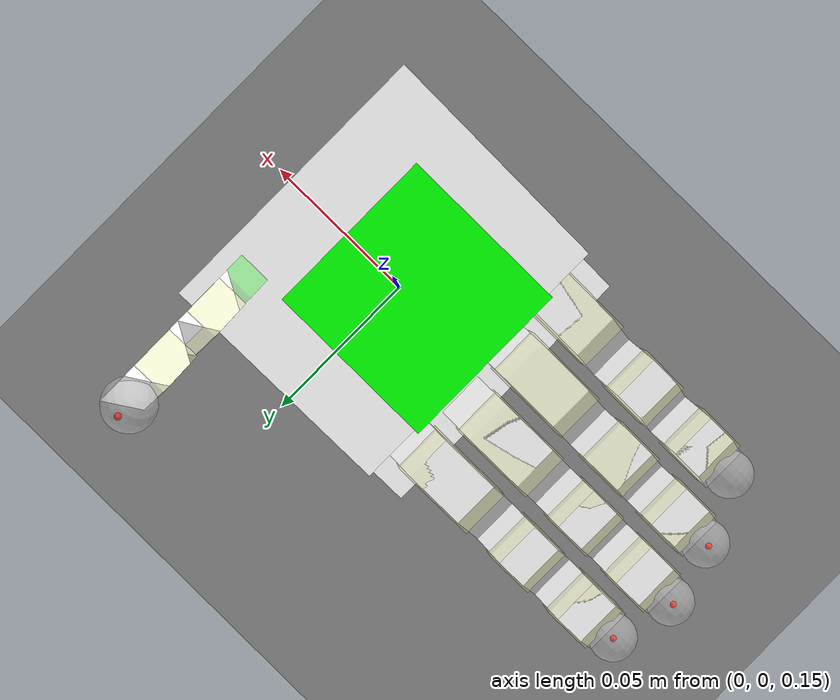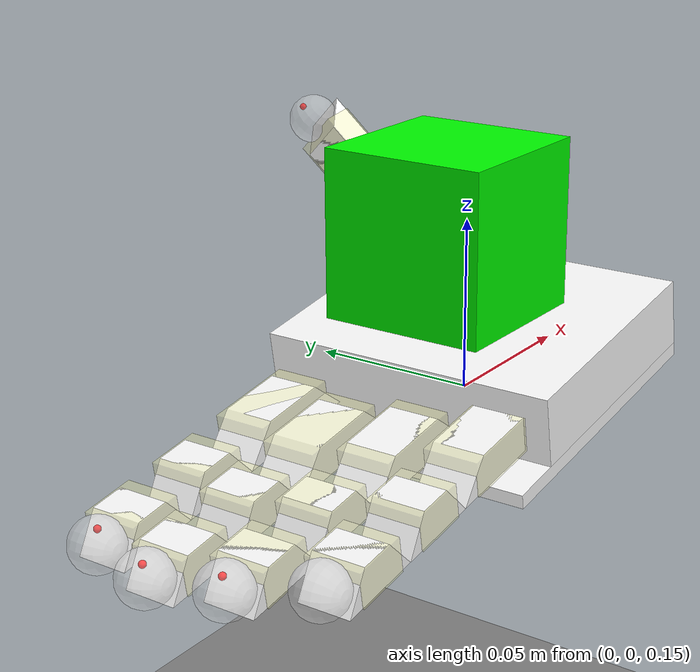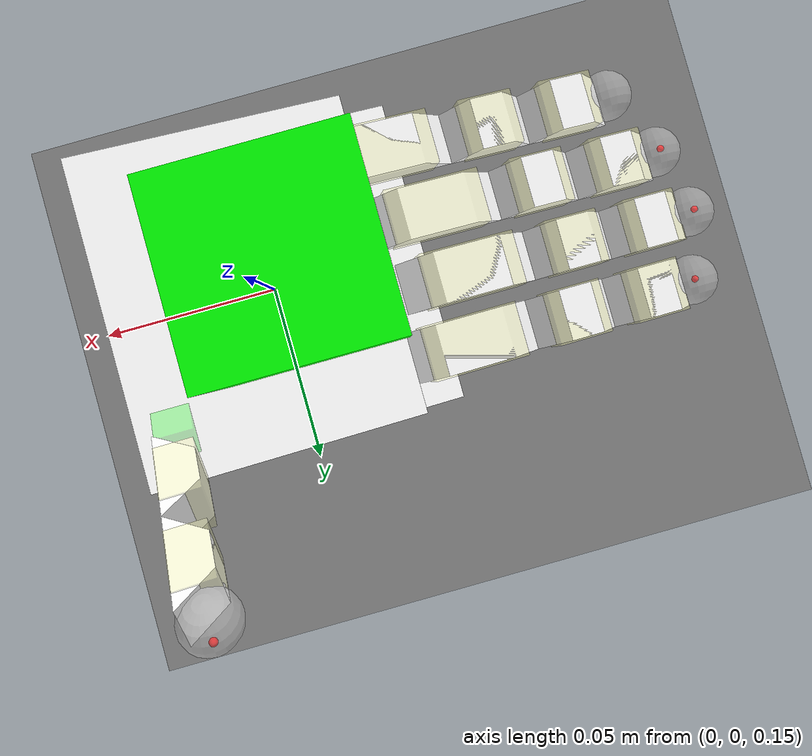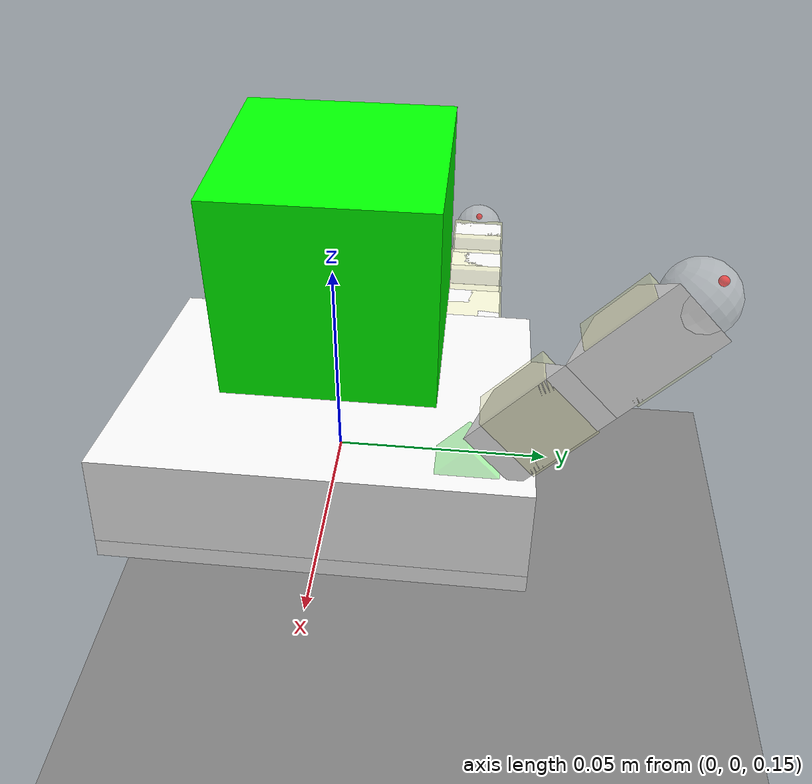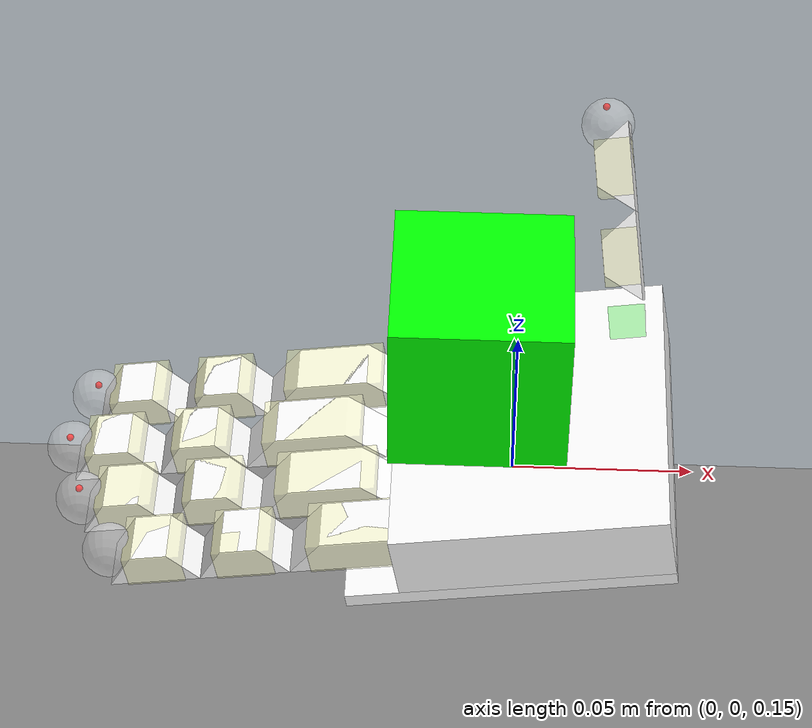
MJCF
<?xml version="1.0" ?>
<!-- Reorient手模型, 5x5 sphere tac sensors -->
<mujoco model="hand">
    <compiler angle="radian"/>
    <option integrator="implicitfast" iterations="6" ls_iterations="4" tolerance="1e-3"/>
    <option>
        <flag filterparent="disable"/>
    </option>
    <option gravity="0 0 -9.81"/>
    <keyframe>
        <key name="home"
            qpos="0 0 0 0 0 0 0 0 0 0 0 0 0 0 0 0 0 0 0 0 0 0 0 0 0 0"
            qvel="0 0 0 0 0 0 0 0 0 0 0 0 0 0 0 0 0 0 0 0 0 0 0 0 0"
            ctrl="0 0 0 0 0 0 0 0 0 0 0 0 0 0 0 0 0 0 0 "
        />
        <!-- qpos 26 qvel 25 ctrl 19 -->
    </keyframe>
    <default>
        <geom solref="0.001 1" solimp="0.99 0.999 0.0001"/>
        <default class="cube">
            <geom friction=".3 0.05" contype="2" conaffinity="1" condim="3"/>
        </default>
        <default class="hand">
            <geom contype="1" conaffinity="2" type="mesh" density="200" friction="0.7 0.05 0.0002" solref="0.02 1.5" solimp="0.9 0.99 0.001" condim="3" rgba="0 0 1 0"/>
        </default>
        <default class="visual">
            <geom contype="0" conaffinity="0" group="2" density="0"/>
        </default>
    </default>
    <asset>
        <mesh name="thumb_base_link" vertex="0.0 0.0 -0.0075 0.04 0.0 -0.0075 0.03 0.01 -0.0075 0.01 0.01 -0.0075 0.0 0.0 0.0075 0.04 0.0 0.0075 0.03 0.01 0.0075 0.01 0.01 0.0075" normal="-0.7734590803390136 -0.3203772410170408 -0.5469181606780271 0.7734590803390136 -0.3203772410170408 -0.5469181606780271 0.2971085791188998 0.7172835612062476 -0.6302624731310217 -0.2971085791188997 0.7172835612062475 -0.6302624731310217 -0.7734590803390136 -0.32037724101704074 0.5469181606780271 0.7734590803390138 -0.32037724101704057 0.5469181606780271 0.29710857911889976 0.7172835612062477 0.6302624731310216 -0.29710857911889976 0.7172835612062476 0.6302624731310217" face="1 0 3 3 2 1 7 4 5 5 6 7 5 4 1 1 4 0 6 5 2 2 5 1 4 7 0 0 7 3 7 6 3 3 6 2"/>
        <mesh name="thumb_link_1" vertex="0.0 0.0 -0.0075 0.04 0.0 -0.0075 0.03 0.01 -0.0075 0.01 0.01 -0.0075 0.0 0.0 0.0075 0.04 0.0 0.0075 0.03 0.01 0.0075 0.01 0.01 0.0075" normal="-0.7734590803390136 -0.3203772410170408 -0.5469181606780271 0.7734590803390136 -0.3203772410170408 -0.5469181606780271 0.2971085791188998 0.7172835612062476 -0.6302624731310217 -0.2971085791188997 0.7172835612062475 -0.6302624731310217 -0.7734590803390136 -0.32037724101704074 0.5469181606780271 0.7734590803390138 -0.32037724101704057 0.5469181606780271 0.29710857911889976 0.7172835612062477 0.6302624731310216 -0.29710857911889976 0.7172835612062476 0.6302624731310217" face="1 0 3 3 2 1 7 4 5 5 6 7 5 4 1 1 4 0 6 5 2 2 5 1 4 7 0 0 7 3 7 6 3 3 6 2"/>
        <mesh name="thumb_link_2" vertex="0.0 0.0 -0.0075 0.025 0.0 -0.0075 0.0175 0.01 -0.0075 0.007500000000000001 0.01 -0.0075 0.0 0.0 0.0075 0.025 0.0 0.0075 0.0175 0.01 0.0075 0.007500000000000001 0.01 0.0075" normal="-0.7464925414001442 -0.3732462707000721 -0.5508503490444955 0.7464925414001442 -0.3732462707000721 -0.5508503490444956 0.351257248032334 0.702514496064668 -0.618944043128098 -0.351257248032334 0.702514496064668 -0.618944043128098 -0.7464925414001442 -0.3732462707000721 0.5508503490444955 0.7464925414001442 -0.373246270700072 0.5508503490444956 0.351257248032334 0.7025144960646681 0.618944043128098 -0.351257248032334 0.702514496064668 0.618944043128098" face="1 0 3 3 2 1 7 4 5 5 6 7 5 4 1 1 4 0 6 5 2 2 5 1 4 7 0 0 7 3 7 6 3 3 6 2"/>
        <mesh name="thumb_link_3" vertex="0.0 0.0 -0.0075 0.025 0.0 -0.0075 0.0175 0.01 -0.0075 0.007500000000000001 0.01 -0.0075 0.0 0.0 0.0075 0.025 0.0 0.0075 0.0175 0.01 0.0075 0.007500000000000001 0.01 0.0075" normal="-0.7464925414001442 -0.3732462707000721 -0.5508503490444955 0.7464925414001442 -0.3732462707000721 -0.5508503490444956 0.351257248032334 0.702514496064668 -0.618944043128098 -0.351257248032334 0.702514496064668 -0.618944043128098 -0.7464925414001442 -0.3732462707000721 0.5508503490444955 0.7464925414001442 -0.373246270700072 0.5508503490444956 0.351257248032334 0.7025144960646681 0.618944043128098 -0.351257248032334 0.702514496064668 0.618944043128098" face="1 0 3 3 2 1 7 4 5 5 6 7 5 4 1 1 4 0 6 5 2 2 5 1 4 7 0 0 7 3 7 6 3 3 6 2"/>
        <mesh name="index_base_link" vertex="0.0 0.0 -0.0075 0.04 0.0 -0.0075 0.03 0.01 -0.0075 0.01 0.01 -0.0075 0.0 0.0 0.0075 0.04 0.0 0.0075 0.03 0.01 0.0075 0.01 0.01 0.0075" normal="-0.7734590803390136 -0.3203772410170408 -0.5469181606780271 0.7734590803390136 -0.3203772410170408 -0.5469181606780271 0.2971085791188998 0.7172835612062476 -0.6302624731310217 -0.2971085791188997 0.7172835612062475 -0.6302624731310217 -0.7734590803390136 -0.32037724101704074 0.5469181606780271 0.7734590803390138 -0.32037724101704057 0.5469181606780271 0.29710857911889976 0.7172835612062477 0.6302624731310216 -0.29710857911889976 0.7172835612062476 0.6302624731310217" face="1 0 3 3 2 1 7 4 5 5 6 7 5 4 1 1 4 0 6 5 2 2 5 1 4 7 0 0 7 3 7 6 3 3 6 2"/>
        <mesh name="index_link_1" vertex="0.0 0.0 -0.0075 0.04 0.0 -0.0075 0.03 0.01 -0.0075 0.01 0.01 -0.0075 0.0 0.0 0.0075 0.04 0.0 0.0075 0.03 0.01 0.0075 0.01 0.01 0.0075" normal="-0.7734590803390136 -0.3203772410170408 -0.5469181606780271 0.7734590803390136 -0.3203772410170408 -0.5469181606780271 0.2971085791188998 0.7172835612062476 -0.6302624731310217 -0.2971085791188997 0.7172835612062475 -0.6302624731310217 -0.7734590803390136 -0.32037724101704074 0.5469181606780271 0.7734590803390138 -0.32037724101704057 0.5469181606780271 0.29710857911889976 0.7172835612062477 0.6302624731310216 -0.29710857911889976 0.7172835612062476 0.6302624731310217" face="1 0 3 3 2 1 7 4 5 5 6 7 5 4 1 1 4 0 6 5 2 2 5 1 4 7 0 0 7 3 7 6 3 3 6 2"/>
        <mesh name="index_link_2" vertex="0.0 0.0 -0.0075 0.025 0.0 -0.0075 0.0175 0.01 -0.0075 0.007500000000000001 0.01 -0.0075 0.0 0.0 0.0075 0.025 0.0 0.0075 0.0175 0.01 0.0075 0.007500000000000001 0.01 0.0075" normal="-0.7464925414001442 -0.3732462707000721 -0.5508503490444955 0.7464925414001442 -0.3732462707000721 -0.5508503490444956 0.351257248032334 0.702514496064668 -0.618944043128098 -0.351257248032334 0.702514496064668 -0.618944043128098 -0.7464925414001442 -0.3732462707000721 0.5508503490444955 0.7464925414001442 -0.373246270700072 0.5508503490444956 0.351257248032334 0.7025144960646681 0.618944043128098 -0.351257248032334 0.702514496064668 0.618944043128098" face="1 0 3 3 2 1 7 4 5 5 6 7 5 4 1 1 4 0 6 5 2 2 5 1 4 7 0 0 7 3 7 6 3 3 6 2"/>
        <mesh name="index_link_3" vertex="0.0 0.0 -0.0075 0.025 0.0 -0.0075 0.0175 0.01 -0.0075 0.007500000000000001 0.01 -0.0075 0.0 0.0 0.0075 0.025 0.0 0.0075 0.0175 0.01 0.0075 0.007500000000000001 0.01 0.0075" normal="-0.7464925414001442 -0.3732462707000721 -0.5508503490444955 0.7464925414001442 -0.3732462707000721 -0.5508503490444956 0.351257248032334 0.702514496064668 -0.618944043128098 -0.351257248032334 0.702514496064668 -0.618944043128098 -0.7464925414001442 -0.3732462707000721 0.5508503490444955 0.7464925414001442 -0.373246270700072 0.5508503490444956 0.351257248032334 0.7025144960646681 0.618944043128098 -0.351257248032334 0.702514496064668 0.618944043128098" face="1 0 3 3 2 1 7 4 5 5 6 7 5 4 1 1 4 0 6 5 2 2 5 1 4 7 0 0 7 3 7 6 3 3 6 2"/>
        <mesh name="middle_base_link" vertex="0.0 0.0 -0.0075 0.04 0.0 -0.0075 0.03 0.01 -0.0075 0.01 0.01 -0.0075 0.0 0.0 0.0075 0.04 0.0 0.0075 0.03 0.01 0.0075 0.01 0.01 0.0075" normal="-0.7734590803390136 -0.3203772410170408 -0.5469181606780271 0.7734590803390136 -0.3203772410170408 -0.5469181606780271 0.2971085791188998 0.7172835612062476 -0.6302624731310217 -0.2971085791188997 0.7172835612062475 -0.6302624731310217 -0.7734590803390136 -0.32037724101704074 0.5469181606780271 0.7734590803390138 -0.32037724101704057 0.5469181606780271 0.29710857911889976 0.7172835612062477 0.6302624731310216 -0.29710857911889976 0.7172835612062476 0.6302624731310217" face="1 0 3 3 2 1 7 4 5 5 6 7 5 4 1 1 4 0 6 5 2 2 5 1 4 7 0 0 7 3 7 6 3 3 6 2"/>
        <mesh name="middle_link_1" vertex="0.0 0.0 -0.0075 0.04 0.0 -0.0075 0.03 0.01 -0.0075 0.01 0.01 -0.0075 0.0 0.0 0.0075 0.04 0.0 0.0075 0.03 0.01 0.0075 0.01 0.01 0.0075" normal="-0.7734590803390136 -0.3203772410170408 -0.5469181606780271 0.7734590803390136 -0.3203772410170408 -0.5469181606780271 0.2971085791188998 0.7172835612062476 -0.6302624731310217 -0.2971085791188997 0.7172835612062475 -0.6302624731310217 -0.7734590803390136 -0.32037724101704074 0.5469181606780271 0.7734590803390138 -0.32037724101704057 0.5469181606780271 0.29710857911889976 0.7172835612062477 0.6302624731310216 -0.29710857911889976 0.7172835612062476 0.6302624731310217" face="1 0 3 3 2 1 7 4 5 5 6 7 5 4 1 1 4 0 6 5 2 2 5 1 4 7 0 0 7 3 7 6 3 3 6 2"/>
        <mesh name="middle_link_2" vertex="0.0 0.0 -0.0075 0.025 0.0 -0.0075 0.0175 0.01 -0.0075 0.007500000000000001 0.01 -0.0075 0.0 0.0 0.0075 0.025 0.0 0.0075 0.0175 0.01 0.0075 0.007500000000000001 0.01 0.0075" normal="-0.7464925414001442 -0.3732462707000721 -0.5508503490444955 0.7464925414001442 -0.3732462707000721 -0.5508503490444956 0.351257248032334 0.702514496064668 -0.618944043128098 -0.351257248032334 0.702514496064668 -0.618944043128098 -0.7464925414001442 -0.3732462707000721 0.5508503490444955 0.7464925414001442 -0.373246270700072 0.5508503490444956 0.351257248032334 0.7025144960646681 0.618944043128098 -0.351257248032334 0.702514496064668 0.618944043128098" face="1 0 3 3 2 1 7 4 5 5 6 7 5 4 1 1 4 0 6 5 2 2 5 1 4 7 0 0 7 3 7 6 3 3 6 2"/>
        <mesh name="middle_link_3" vertex="0.0 0.0 -0.0075 0.025 0.0 -0.0075 0.0175 0.01 -0.0075 0.007500000000000001 0.01 -0.0075 0.0 0.0 0.0075 0.025 0.0 0.0075 0.0175 0.01 0.0075 0.007500000000000001 0.01 0.0075" normal="-0.7464925414001442 -0.3732462707000721 -0.5508503490444955 0.7464925414001442 -0.3732462707000721 -0.5508503490444956 0.351257248032334 0.702514496064668 -0.618944043128098 -0.351257248032334 0.702514496064668 -0.618944043128098 -0.7464925414001442 -0.3732462707000721 0.5508503490444955 0.7464925414001442 -0.373246270700072 0.5508503490444956 0.351257248032334 0.7025144960646681 0.618944043128098 -0.351257248032334 0.702514496064668 0.618944043128098" face="1 0 3 3 2 1 7 4 5 5 6 7 5 4 1 1 4 0 6 5 2 2 5 1 4 7 0 0 7 3 7 6 3 3 6 2"/>
        <mesh name="ring_base_link" vertex="0.0 0.0 -0.0075 0.04 0.0 -0.0075 0.03 0.01 -0.0075 0.01 0.01 -0.0075 0.0 0.0 0.0075 0.04 0.0 0.0075 0.03 0.01 0.0075 0.01 0.01 0.0075" normal="-0.7734590803390136 -0.3203772410170408 -0.5469181606780271 0.7734590803390136 -0.3203772410170408 -0.5469181606780271 0.2971085791188998 0.7172835612062476 -0.6302624731310217 -0.2971085791188997 0.7172835612062475 -0.6302624731310217 -0.7734590803390136 -0.32037724101704074 0.5469181606780271 0.7734590803390138 -0.32037724101704057 0.5469181606780271 0.29710857911889976 0.7172835612062477 0.6302624731310216 -0.29710857911889976 0.7172835612062476 0.6302624731310217" face="1 0 3 3 2 1 7 4 5 5 6 7 5 4 1 1 4 0 6 5 2 2 5 1 4 7 0 0 7 3 7 6 3 3 6 2"/>
        <mesh name="ring_link_1" vertex="0.0 0.0 -0.0075 0.04 0.0 -0.0075 0.03 0.01 -0.0075 0.01 0.01 -0.0075 0.0 0.0 0.0075 0.04 0.0 0.0075 0.03 0.01 0.0075 0.01 0.01 0.0075" normal="-0.7734590803390136 -0.3203772410170408 -0.5469181606780271 0.7734590803390136 -0.3203772410170408 -0.5469181606780271 0.2971085791188998 0.7172835612062476 -0.6302624731310217 -0.2971085791188997 0.7172835612062475 -0.6302624731310217 -0.7734590803390136 -0.32037724101704074 0.5469181606780271 0.7734590803390138 -0.32037724101704057 0.5469181606780271 0.29710857911889976 0.7172835612062477 0.6302624731310216 -0.29710857911889976 0.7172835612062476 0.6302624731310217" face="1 0 3 3 2 1 7 4 5 5 6 7 5 4 1 1 4 0 6 5 2 2 5 1 4 7 0 0 7 3 7 6 3 3 6 2"/>
        <mesh name="ring_link_2" vertex="0.0 0.0 -0.0075 0.025 0.0 -0.0075 0.0175 0.01 -0.0075 0.007500000000000001 0.01 -0.0075 0.0 0.0 0.0075 0.025 0.0 0.0075 0.0175 0.01 0.0075 0.007500000000000001 0.01 0.0075" normal="-0.7464925414001442 -0.3732462707000721 -0.5508503490444955 0.7464925414001442 -0.3732462707000721 -0.5508503490444956 0.351257248032334 0.702514496064668 -0.618944043128098 -0.351257248032334 0.702514496064668 -0.618944043128098 -0.7464925414001442 -0.3732462707000721 0.5508503490444955 0.7464925414001442 -0.373246270700072 0.5508503490444956 0.351257248032334 0.7025144960646681 0.618944043128098 -0.351257248032334 0.702514496064668 0.618944043128098" face="1 0 3 3 2 1 7 4 5 5 6 7 5 4 1 1 4 0 6 5 2 2 5 1 4 7 0 0 7 3 7 6 3 3 6 2"/>
        <mesh name="ring_link_3" vertex="0.0 0.0 -0.0075 0.025 0.0 -0.0075 0.0175 0.01 -0.0075 0.007500000000000001 0.01 -0.0075 0.0 0.0 0.0075 0.025 0.0 0.0075 0.0175 0.01 0.0075 0.007500000000000001 0.01 0.0075" normal="-0.7464925414001442 -0.3732462707000721 -0.5508503490444955 0.7464925414001442 -0.3732462707000721 -0.5508503490444956 0.351257248032334 0.702514496064668 -0.618944043128098 -0.351257248032334 0.702514496064668 -0.618944043128098 -0.7464925414001442 -0.3732462707000721 0.5508503490444955 0.7464925414001442 -0.373246270700072 0.5508503490444956 0.351257248032334 0.7025144960646681 0.618944043128098 -0.351257248032334 0.702514496064668 0.618944043128098" face="1 0 3 3 2 1 7 4 5 5 6 7 5 4 1 1 4 0 6 5 2 2 5 1 4 7 0 0 7 3 7 6 3 3 6 2"/>
        <mesh name="little_base_link" vertex="0.0 0.0 -0.0075 0.04 0.0 -0.0075 0.03 0.01 -0.0075 0.01 0.01 -0.0075 0.0 0.0 0.0075 0.04 0.0 0.0075 0.03 0.01 0.0075 0.01 0.01 0.0075" normal="-0.7734590803390136 -0.3203772410170408 -0.5469181606780271 0.7734590803390136 -0.3203772410170408 -0.5469181606780271 0.2971085791188998 0.7172835612062476 -0.6302624731310217 -0.2971085791188997 0.7172835612062475 -0.6302624731310217 -0.7734590803390136 -0.32037724101704074 0.5469181606780271 0.7734590803390138 -0.32037724101704057 0.5469181606780271 0.29710857911889976 0.7172835612062477 0.6302624731310216 -0.29710857911889976 0.7172835612062476 0.6302624731310217" face="1 0 3 3 2 1 7 4 5 5 6 7 5 4 1 1 4 0 6 5 2 2 5 1 4 7 0 0 7 3 7 6 3 3 6 2"/>
        <mesh name="little_link_1" vertex="0.0 0.0 -0.0075 0.04 0.0 -0.0075 0.03 0.01 -0.0075 0.01 0.01 -0.0075 0.0 0.0 0.0075 0.04 0.0 0.0075 0.03 0.01 0.0075 0.01 0.01 0.0075" normal="-0.7734590803390136 -0.3203772410170408 -0.5469181606780271 0.7734590803390136 -0.3203772410170408 -0.5469181606780271 0.2971085791188998 0.7172835612062476 -0.6302624731310217 -0.2971085791188997 0.7172835612062475 -0.6302624731310217 -0.7734590803390136 -0.32037724101704074 0.5469181606780271 0.7734590803390138 -0.32037724101704057 0.5469181606780271 0.29710857911889976 0.7172835612062477 0.6302624731310216 -0.29710857911889976 0.7172835612062476 0.6302624731310217" face="1 0 3 3 2 1 7 4 5 5 6 7 5 4 1 1 4 0 6 5 2 2 5 1 4 7 0 0 7 3 7 6 3 3 6 2"/>
        <mesh name="little_link_2" vertex="0.0 0.0 -0.0075 0.025 0.0 -0.0075 0.0175 0.01 -0.0075 0.007500000000000001 0.01 -0.0075 0.0 0.0 0.0075 0.025 0.0 0.0075 0.0175 0.01 0.0075 0.007500000000000001 0.01 0.0075" normal="-0.7464925414001442 -0.3732462707000721 -0.5508503490444955 0.7464925414001442 -0.3732462707000721 -0.5508503490444956 0.351257248032334 0.702514496064668 -0.618944043128098 -0.351257248032334 0.702514496064668 -0.618944043128098 -0.7464925414001442 -0.3732462707000721 0.5508503490444955 0.7464925414001442 -0.373246270700072 0.5508503490444956 0.351257248032334 0.7025144960646681 0.618944043128098 -0.351257248032334 0.702514496064668 0.618944043128098" face="1 0 3 3 2 1 7 4 5 5 6 7 5 4 1 1 4 0 6 5 2 2 5 1 4 7 0 0 7 3 7 6 3 3 6 2"/>
        <mesh name="little_link_3" vertex="0.0 0.0 -0.0075 0.025 0.0 -0.0075 0.0175 0.01 -0.0075 0.007500000000000001 0.01 -0.0075 0.0 0.0 0.0075 0.025 0.0 0.0075 0.0175 0.01 0.0075 0.007500000000000001 0.01 0.0075" normal="-0.7464925414001442 -0.3732462707000721 -0.5508503490444955 0.7464925414001442 -0.3732462707000721 -0.5508503490444956 0.351257248032334 0.702514496064668 -0.618944043128098 -0.351257248032334 0.702514496064668 -0.618944043128098 -0.7464925414001442 -0.3732462707000721 0.5508503490444955 0.7464925414001442 -0.373246270700072 0.5508503490444956 0.351257248032334 0.7025144960646681 0.618944043128098 -0.351257248032334 0.702514496064668 0.618944043128098" face="1 0 3 3 2 1 7 4 5 5 6 7 5 4 1 1 4 0 6 5 2 2 5 1 4 7 0 0 7 3 7 6 3 3 6 2"/>
        <texture type="2d" name="groundplane" builtin="checker" mark="edge" rgb1="1 1 1" rgb2="0 0 0" markrgb="0 0 0" width="300" height="300"/>
        <material name="groundplane" texture="groundplane" texuniform="true" texrepeat="5 5" reflectance="0"/>
    </asset>
    <worldbody>
        <!-- 一些辅助元素 -->
        <geom name="floor" pos="0 0 0" size="0 0 0.01" type="plane" material="groundplane" contype="1" conaffinity="1" friction="1 0.05 0.05" solref="0.001 1" solimp="0.98 0.99 0.001"/>
        <!-- 手的定义 -->
        <body name="palm" pos="0 0 0.15" euler="3.14 3.3 0" childclass="hand">
            <geom type="box" size="0.045 0.045 0.002" rgba="1 1 1 1" density="200"/>
            <geom type="box" size="0.0375 0.045 0.01" pos="-0.0075 0 0.012" rgba="1 1 1 1" density="200"/>
            <!-- 拇指基座 -->
            <body name="thumb_base_link" pos="-0.035 -0.02 0.01" euler="1.57 -1.57 0.0">
                <joint name="thumb_joint_0" type="hinge" axis="0 1 0" range="-0.1 0.1" limited="true" solreflimit=".001 1" solimplimit="0.97 0.99 0.00001 0.1 2" damping="0.2"/>
                <geom conaffinity="0" contype="0" type="sphere" size=".002"/>
                <!-- 拇指第一节 -->
                <body name="thumb_link_1" pos="0.01 0.01 0.0" euler="0.0 0.0 0.785">
                    <joint name="thumb_joint_1" type="hinge" axis="0 1 0" range="0 0.1" limited="true" solreflimit=".001 1" solimplimit="0.97 0.99 0.00001 0.1 2" damping="0.2"/>
                    <geom conaffinity="0" contype="0" type="sphere" size=".002"/>
                    <geom type="box" size="0.007 0.005 0.005" rgba="0 1 0 0.3" density="1000"/>
                    <!-- 拇指第二节 -->
                    <body name="thumb_link_2" pos="0.008 0 0.005" euler="-1.57 0 0">
                        <joint name="thumb_joint_2" type="hinge" axis="0 0 1" range="0 0.1" limited="true" solreflimit=".001 1" solimplimit="0.97 0.99 0.00001 0.1 2" damping="0.2"/>
                        <geom conaffinity="0" contype="0" type="mesh" rgba="1 1 1 1" mesh="thumb_link_2"/>
                        <geom type="mesh" mesh="thumb_link_2" rgba="0 0 1 1" density="1000" class="visual"/>
                        <geom name="thumb_link_2_collision_box" type="box" pos="0.0125 0.005 0" size="0.008 0.005 0.008" rgba="1 1 .6 .3" density="200" friction="0.7 0.05 0.0002" solref="0.02 1.5" solimp="0.9 0.99 0.001"/>
                        <!-- 拇指第三节 -->
                        <body name="thumb_link_3" pos="0.025 0 0" euler="0 0 0">
                            <joint name="thumb_joint_3" type="hinge" axis="0 0 1" range="0 0.1" limited="true" solreflimit=".001 1" solimplimit="0.97 0.99 0.00001 0.1 2" damping="0.2"/>
                            <geom conaffinity="0" contype="0" type="mesh" rgba="1 1 1 1" mesh="thumb_link_3"/>
                            <geom type="mesh" mesh="thumb_link_3" rgba="1 1 0 1" density="1000" class="visual"/>
                            <geom name="thumb_link_3_collision_box" type="box" pos="0.0125 0.005 0" size="0.008 0.005 0.008" rgba="1 1 .6 .3" density="200" friction="0.7 0.05 0.0002" solref="0.02 1.5" solimp="0.9 0.99 0.001"/>
                            <geom type="sphere" pos="0.025 0.006 0" size="0.0075" rgba="1 1 1 .3" density="200" friction="0.7 0.05 0.0002" solref="0.02 1.5" solimp="0.9 0.99 0.001"/>
                            <site name="thumb_fingertip" pos="0.03 0.006 0" size="0.001" rgba="0.9 0 0 1"/>
                        </body>
                    </body>
                </body>
            </body>
            <body name="index_base_link" pos="0.015 -0.03 0.005" euler="1.57 0.0 0.0">
                <joint name="index_swing" axis="0 -1 0" range="0 0.5" damping="0.2"/>
                <geom type="sphere" size=".002"/>
                <body name="index_link_1" pos="0.015 0 0">
                    <joint name="index_joint_0" pos="0 0 0" axis="0 0 1" stiffness="0.2" springref="0.0" damping="0.2" range="0 3.14" frictionloss="0.08"/>
                    <geom name="index_link_1_collision_box" type="box" pos="0.02 0.005 0" size="0.014 0.005 0.008" rgba="1 1 .6 .3" density="200" friction="0.7 0.05 0.0002" solref="0.02 1.5" solimp="0.9 0.99 0.001"/>
                    <geom type="mesh" rgba="1 1 1 1" mesh="index_link_1" class="visual"/>
                    <body name="index_link_2" pos="0.04 0 0">
                        <joint name="index_joint_1" pos="0 0 0" axis="0 0 1" stiffness="0.2" springref="0.0" damping="0.05" range="0 3.14" frictionloss="0.04"/>
                        <geom name="index_link_2_collision_box" type="box" pos="0.012 0.005 0" size="0.008 0.005 0.008" rgba="1 1 .6 .3" density="200" friction="0.7 0.05 0.0002" solref="0.02 1.5" solimp="0.9 0.99 0.001"/>
                        <geom type="mesh" rgba="1 1 1 1" mesh="index_link_2" class="visual"/>
                        <body name="index_link_3" pos="0.025 0 0">
                            <joint name="index_joint_2" pos="0 0 0" axis="0 0 1" stiffness="0.2" springref="0.0" damping="0.01" range="0 1.3" frictionloss="0.02"/>
                            <geom type="sphere" pos="0.025 0.006 0" size="0.0075" rgba="1 1 1 .3" density="200" friction="0.7 0.05 0.0002" solref="0.02 1.5" solimp="0.9 0.99 0.001"/>
                            <geom type="mesh" rgba="1 1 1 1" mesh="index_link_3" class="visual"/>
                            <geom name="index_link_3_collision_box" type="box" pos="0.012 0.005 0" size="0.008 0.005 0.008" rgba="1 1 .6 .3" density="200" friction="0.7 0.05 0.0002" solref="0.02 1.5" solimp="0.9 0.99 0.001"/>
                            <site name="index_fingertip" pos="0.024 0.01 0" size="0.001" rgba=".9 0 0 .9"/>
                        </body>
                    </body>
                </body>
            </body>
            <body name="middle_base_link" pos="0.02 -0.01 0.005" euler="1.57 0.0 0.0">
                <body name="middle_link_1" pos="0.015 0 0">
                    <joint name="middle_joint_0" pos="0 0 0" axis="0 0 1" stiffness="0.1" springref="0.0" damping="0.2" range="0 3.14"/>
                    <geom type="mesh" rgba="1 1 1 1" mesh="middle_link_1" class="visual"/>
                    <geom name="middle_link_1_collision_box" type="box" pos="0.02 0.005 0" size="0.014 0.005 0.008" rgba="1 1 .6 .3" density="200" friction="0.7 0.05 0.0002" solref="0.02 1.5" solimp="0.9 0.99 0.001"/>>
                    <body name="middle_link_2" pos="0.04 0 0">
                        <joint name="middle_joint_1" pos="0 0 0" axis="0 0 1" stiffness="0.1" springref="0.0" damping="0.2" range="0 3.14"/>
                        <geom type="mesh" rgba="1 1 1 1" mesh="middle_link_2" class="visual"/>
                        <geom name="middle_link_2_collision_box" type="box" pos="0.012 0.005 0" size="0.008 0.005 0.008" rgba="1 1 .6 .3" density="200" friction="0.7 0.05 0.0002" solref="0.02 1.5" solimp="0.9 0.99 0.001"/>
                        <body name="middle_link_3" pos="0.025 0 0">
                            <joint name="middle_joint_2" pos="0 0 0" axis="0 0 1" stiffness="0.1" springref="0.0" damping="0.2" range="0 1.3"/>
                            <geom type="sphere" pos="0.025 0.006 0" size="0.0075" rgba="1 1 1 .3" density="200" friction="0.7 0.05 0.0002" solref="0.02 1.5" solimp="0.9 0.99 0.001"/>
                            <geom type="mesh" rgba="1 1 1 1" mesh="middle_link_3" class="visual"/>
                            <geom name="middle_link_3_collision_box" type="box" pos="0.012 0.005 0" size="0.008 0.005 0.008" rgba="1 1 .6 .3" density="200" friction="0.7 0.05 0.0002" solref="0.02 1.5" solimp="0.9 0.99 0.001"/>
                            <site name="middle_fingertip" pos="0.025 0.01 0" size="0.001" rgba="1 0 0 1"/>
                        </body>
                    </body>
                </body>
            </body>
            <body name="ring_base_link" pos="0.015 0.01 0.005" euler="1.57 0.0 0.0">
                <joint name="ring_swing" axis="0 1 0" range="0 0.5" damping="0.2"/>
                <geom type="sphere" size=".002"/>
                <body name="ring_link_1" pos="0.015 0 0">
                    <joint name="ring_joint_0" pos="0 0 0" axis="0 0 1" stiffness="0.1" springref="0.0" damping="0.2" range="0 3.14"/>
                    <geom type="mesh" rgba="1 1 1 1" mesh="ring_link_1" class="visual"/>
                    <geom name="ring_link_1_collision_box" type="box" pos="0.02 0.005 0" size="0.014 0.005 0.008" rgba="1 1 .6 .3" density="200" friction="0.7 0.05 0.0002" solref="0.02 1.5" solimp="0.9 0.99 0.001"/>
                    <body name="ring_link_2" pos="0.04 0 0">
                        <joint name="ring_joint_1" pos="0 0 0" axis="0 0 1" stiffness="0.1" springref="0.0" damping="0.2" range="0 3.14"/>
                        <geom type="mesh" rgba="1 1 1 1" mesh="ring_link_2" class="visual"/>
                        <geom name="ring_link_2_collision_box" type="box" pos="0.012 0.005 0" size="0.008 0.005 0.008" rgba="1 1 .6 .3" density="200" friction="0.7 0.05 0.0002" solref="0.02 1.5" solimp="0.9 0.99 0.001"/>
                        <body name="ring_link_3" pos="0.025 0 0">
                            <joint name="ring_joint_2" pos="0 0 0" axis="0 0 1" stiffness="0.1" springref="0.0" damping="0.2" range="0 1.3"/>
                            <geom type="sphere" pos="0.025 0.006 0" size="0.0075" rgba="1 1 1 .3" density="200" friction="0.7 0.05 0.0002" solref="0.02 1.5" solimp="0.9 0.99 0.001"/>
                            <geom type="mesh" rgba="1 1 1 1" mesh="ring_link_3" class="visual"/>
                            <geom name="ring_link_3_collision_box" type="box" pos="0.012 0.005 0" size="0.008 0.005 0.008" rgba="1 1 .6 .3" density="200" friction="0.7 0.05 0.0002" solref="0.02 1.5" solimp="0.9 0.99 0.001"/>
                            <site name="ring_fingertip" pos="0.025 0.01 0" size="0.001" rgba="1 0 0 1"/>
                        </body>
                    </body>
                </body>
            </body>
            <body name="little_base_link" pos="0.005 0.03 0.005" euler="1.57 0.0 0.0">
                <joint name="little_swing" axis="0 1 0" range="0 0.75" damping="0.2"/>
                <geom type="sphere" size=".002"/>
                <body name="little_link_1" pos="0.015 0 0">
                    <joint name="little_joint_0" pos="0 0 0" axis="0 0 1" stiffness="0.1" springref="0.0" damping="0.2" range="0 3.14"/>
                    <geom type="mesh" rgba="1 1 1 1" mesh="little_link_1" class="visual"/>
                    <geom name="little_link_1_collision_box" type="box" pos="0.02 0.005 0" size="0.014 0.005 0.008" rgba="1 1 .6 .3" density="200" friction="0.7 0.05 0.0002" solref="0.02 1.5" solimp="0.9 0.99 0.001"/>
                    <body name="little_link_2" pos="0.04 0 0">
                        <joint name="little_joint_1" pos="0 0 0" axis="0 0 1" stiffness="0.1" springref="0.0" damping="0.2" range="0 3.14"/>
                        <geom type="mesh" rgba="1 1 1 1" mesh="little_link_2" class="visual"/>
                        <geom name="little_link_2_collision_box" type="box" pos="0.012 0.005 0" size="0.008 0.005 0.008" rgba="1 1 .6 .3" density="200" friction="0.7 0.05 0.0002" solref="0.02 1.5" solimp="0.9 0.99 0.001"/>
                        <body name="little_link_3" pos="0.025 0 0">
                            <joint name="little_joint_2" pos="0 0 0" axis="0 0 1" stiffness="0.1" springref="0.0" damping="0.2" range="0 1.3"/>
                            <geom type="sphere" pos="0.025 0.006 0" size="0.0075" rgba="1 1 1 .3" density="200" friction="0.7 0.05 0.0002" solref="0.02 1.5" solimp="0.9 0.99 0.001"/>
                            <site name="little_fingertip" pos="0.025 0.01 0" size="0.001" rgba="1 0 0 .3"/>
                            <geom type="mesh" rgba="1 1 1 1" mesh="little_link_3" class="visual"/>
                            <geom name="little_link_3_collision_box" type="box" pos="0.012 0.005 0" size="0.008 0.005 0.008" rgba="1 1 .6 .3" density="200" friction="0.7 0.05 0.0002" solref="0.02 1.5" solimp="0.9 0.99 0.001"/>
                        </body>
                    </body>
                </body>
            </body>
        </body>
        <!-- cube 的定义 -->
        <body name="cube" pos="-0.01 0.0 0.2" quat="1 0 0 0" childclass="cube">
            <freejoint name="cube_freejoint"/>
            <geom name="cube" type="box" size=".024 .024 .024" mass=".108" group="0" rgba="0 1 0 1"/>
            <site name="cube_center" pos="0 0 0" group="4"/>
        </body>
    </worldbody>
    <actuator>
        <!-- 魔法电机直接驱动关节 -->
        <position name="thumb_joint_0" joint="thumb_joint_0" ctrllimited="true" ctrlrange="-1.57 3.14" kp="3"/>
        <position name="thumb_joint_1" joint="thumb_joint_1" ctrllimited="true" ctrlrange="-1.57 1.57" kp="3"/>
        <position name="thumb_joint_2" joint="thumb_joint_2" ctrllimited="true" ctrlrange="0 1.3" kp="3"/>
        <position name="thumb_joint_3" joint="thumb_joint_3" ctrllimited="true" ctrlrange="0 1.57" kp="3"/>
        <position name="index_joint_0" joint="index_joint_0" ctrllimited="true" ctrlrange="0 1.57" kp="3"/>
        <position name="index_joint_1" joint="index_joint_1" ctrllimited="true" ctrlrange="0 1.57" kp="3"/>
        <position name="index_joint_2" joint="index_joint_2" ctrllimited="true" ctrlrange="0 1.3" kp="3"/>
        <position name="middle_joint_0" joint="middle_joint_0" ctrllimited="true" ctrlrange="0 1.57" kp="3"/>
        <position name="middle_joint_1" joint="middle_joint_1" ctrllimited="true" ctrlrange="0 1.57" kp="3"/>
        <position name="middle_joint_2" joint="middle_joint_2" ctrllimited="true" ctrlrange="0 1.3" kp="3"/>
        <position name="ring_joint_0" joint="ring_joint_0" ctrllimited="true" ctrlrange="0 1.57" kp="3"/>
        <position name="ring_joint_1" joint="ring_joint_1" ctrllimited="true" ctrlrange="0 1.57" kp="3"/>
        <position name="ring_joint_2" joint="ring_joint_2" ctrllimited="true" ctrlrange="0 1.3" kp="3"/>
        <position name="little_joint_0" joint="little_joint_0" ctrllimited="true" ctrlrange="0 1.57" kp="3"/>
        <position name="little_joint_1" joint="little_joint_1" ctrllimited="true" ctrlrange="0 1.57" kp="3"/>
        <position name="little_joint_2" joint="little_joint_2" ctrllimited="true" ctrlrange="0 1.3" kp="3"/>
        <position name="index_swing" joint="index_swing" ctrllimited="true" ctrlrange="0 0.5" kp="3" dampratio="2"/>
        <position name="little_swing" joint="little_swing" ctrllimited="true" ctrlrange="0 0.75" kp="3" dampratio="2"/>
        <position name="ring_swing" joint="ring_swing" ctrllimited="true" ctrlrange="0 0.5" kp="3" dampratio="2"/>
    </actuator>
    <sensor>
        <!-- cube sensor -->
        <framepos name="cube_pos" objtype="body" objname="cube"/>
        <framequat name="cube_quat" objtype="body" objname="cube"/>
        <framelinvel name="cube_linvel" objtype="body" objname="cube"/>
        <frameangvel name="cube_angvel" objtype="body" objname="cube"/>
        <frameangacc name="cube_angacc" objtype="body" objname="cube"/>
        <framezaxis name="cube_upvector" objtype="body" objname="cube"/>
        <!-- palm pos sensor -->
        <framepos name="palm_pos" objtype="body" objname="palm"/>
        <!-- fingertip pos sensor -->
        <framepos name="thumb_fingertip_pos" objtype="site" objname="thumb_fingertip"/>
        <framepos name="index_fingertip_pos" objtype="site" objname="index_fingertip"/>
        <framepos name="middle_fingertip_pos" objtype="site" objname="middle_fingertip"/>
        <framepos name="ring_fingertip_pos" objtype="site" objname="ring_fingertip"/>
        <framepos name="little_fingertip_pos" objtype="site" objname="little_fingertip"/>
    </sensor>
</mujoco>
